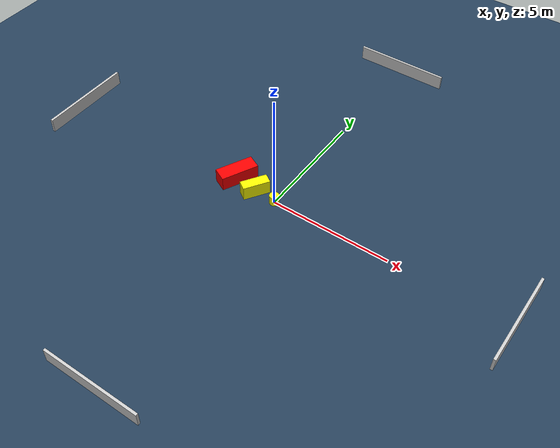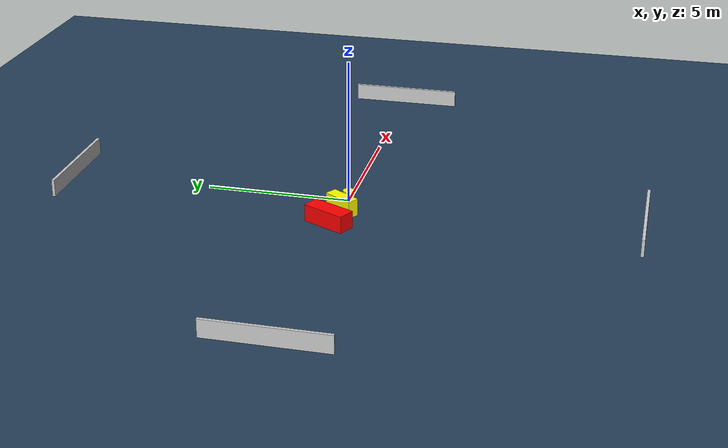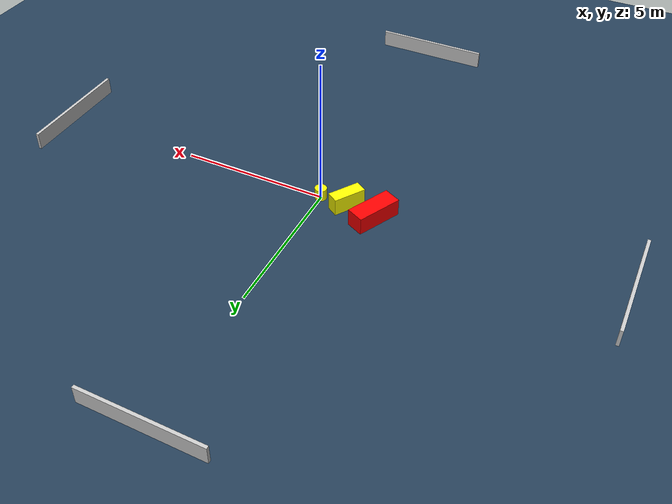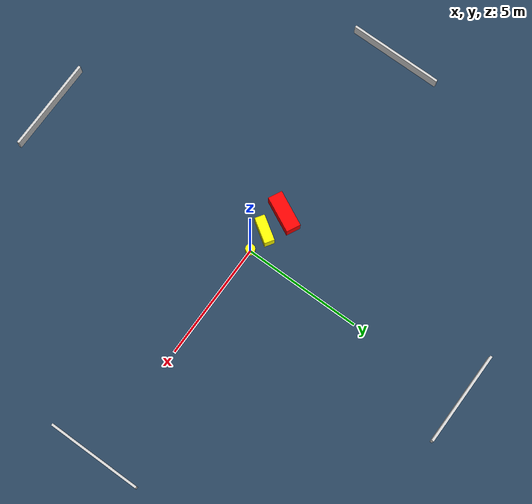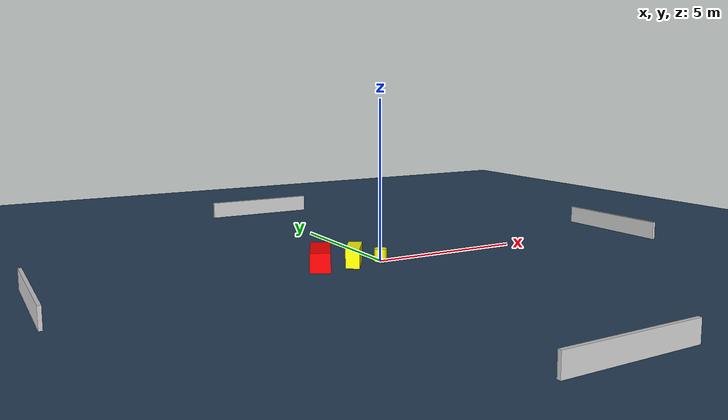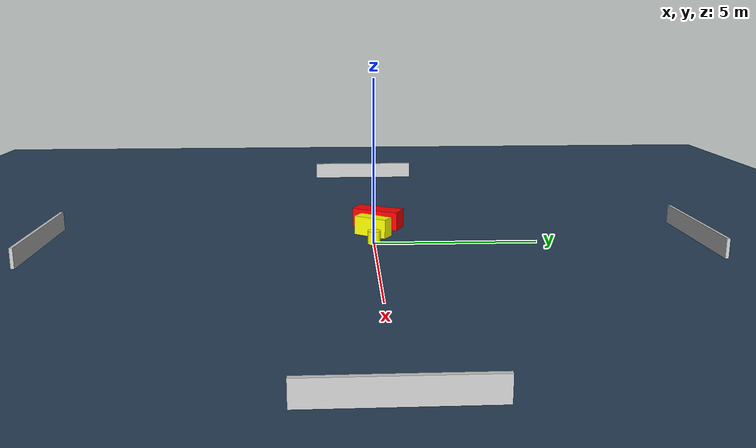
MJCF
<?xml version="1.0" ?>
<mujoco model="generated_environment">
  <option timestep="0.01" integrator="RK4" cone="elliptic"/>
  <default>
    <geom density="1"/>
  </default>
  <asset>
    <texture builtin="gradient" height="3072" name="skybox" rgb1="0.3 0.5 0.7" rgb2="0 0 0" type="skybox" width="512"/>
    <texture builtin="checker" height="300" name="groundplane" rgb1="0.2 0.3 0.4" rgb2="0.1 0.2 0.3" type="2d" width="300"/>
    <material name="groundplane" reflectance="0.2" texrepeat="5 5" texture="groundplane"/>
  </asset>
  <worldbody>
    <light dir="0 0 -1" directional="true" pos="0 0 1.5"/>
    <geom condim="3" friction="0.5 0.005 0.001" material="groundplane" name="floor" pos="0 0 0" size="0 0 0.05" type="plane"/>
    <body name="walls">
      <geom name="wall_1" condim="4" pos="-10.0 0.0 0.3" rgba="0.800000011920929 0.800000011920929 0.800000011920929 1.0" size="0.05 2.0 0.3" type="box"/>
      <geom name="wall_2" condim="4" pos="10.0 0.0 0.3" rgba="0.800000011920929 0.800000011920929 0.800000011920929 1.0" size="0.05 2.0 0.3" type="box"/>
      <geom name="wall_3" condim="4" pos="0.0 -10.0 0.3" rgba="0.800000011920929 0.800000011920929 0.800000011920929 1.0" size="2.0 0.05 0.3" type="box"/>
      <geom name="wall_4" condim="4" pos="0.0 10.0 0.3" rgba="0.800000011920929 0.800000011920929 0.800000011920929 1.0" size="2.0 0.05 0.3" type="box"/>
    </body>
    <body name="robot">
      <joint name="joint_x" type="slide" pos="0 0 0" axis="1 0 0"/>
      <joint name="joint_y" type="slide" pos="0 0 0" axis="0 1 0"/>
      <geom name="robot" type="cylinder" pos="0.0 0.0 0.2" size="0.2 0.2 0.0" mass="5.0" friction="1.0 0.005 0.0001" condim="4" rgba="1.0 1.0 0.0 1.0"/>
    </body>
    <body name="obstacle_1_movable">
      <geom name="obstacle_1_movable" condim="4" pos="-0.9287688103216981 0.01297385822769652 0.3" euler="0 0 326.8178076453505" friction="0.0 0.005 0.001" rgba="1.0 1.0 0.0 1.0" size="0.21182539742058418 0.5516619470906141 0.3" type="box" mass="0.1"/>
      <joint type="free"/>
    </body>
    <body name="obstacle_2_static">
      <geom name="obstacle_2_static" condim="4" pos="-1.9631265820657617 0.2208420625721171 0.3" euler="0 0 153.91239059601983" friction="0.0 0.005 0.001" rgba="1.0 0.0 0.0 1.0" size="0.30492527188083096 0.7798610495463094 0.3" type="box"/>
    </body>
  </worldbody>
  <actuator>
    <motor name="actuator_x" joint="joint_x" gear="1" ctrlrange="-1 1"/>
    <motor name="actuator_y" joint="joint_y" gear="1" ctrlrange="-1 1"/>
  </actuator>
</mujoco>
